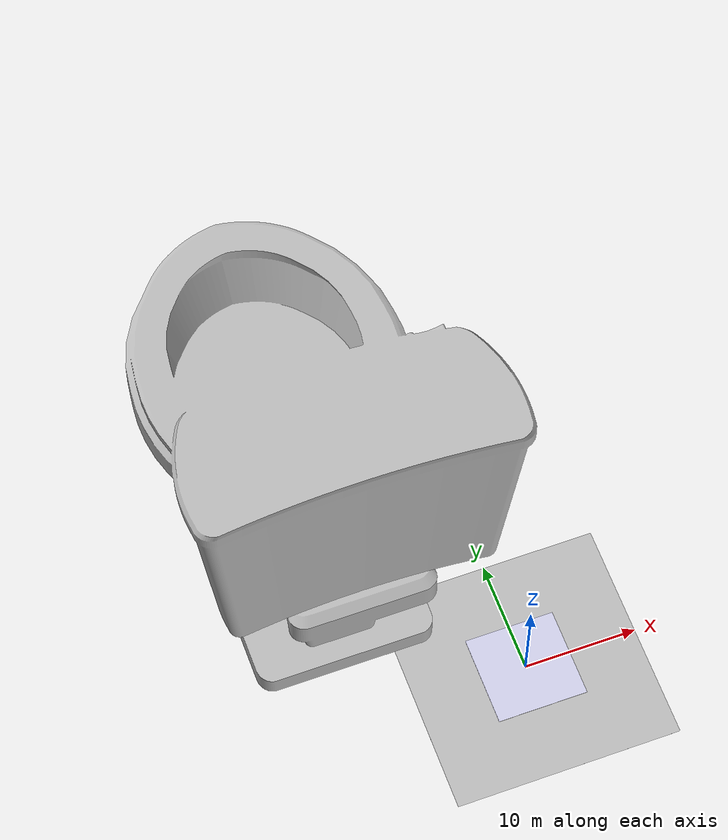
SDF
<sdf version="1.10">
 <world name="toilet_world">
  <physics name="1ms" type="ignored">
   <max_step_size>0.001</max_step_size>
   <real_time_factor>1</real_time_factor>
   <real_time_update_rate>1000</real_time_update_rate>
  </physics>
  <plugin name="gz::sim::systems::Physics" filename="gz-sim-physics-system"/>
  <plugin name="gz::sim::systems::UserCommands" filename="gz-sim-user-commands-system"/>
  <plugin name="gz::sim::systems::SceneBroadcaster" filename="gz-sim-scene-broadcaster-system"/>
  <plugin name="gz::sim::systems::Sensors" filename="gz-sim-sensors-system">
   <render_engine>ogre2</render_engine>
  </plugin>
  <scene>
   <ambient>0.400000006 0.400000006 0.400000006 1</ambient>
   <background>0.699999988 0.699999988 0.699999988 1</background>
   <shadows>true</shadows>
  </scene>
  <gravity>0 0 -9.8000000000000007</gravity>
  <magnetic_field>5.5644999999999998e-06 2.2875799999999999e-05 -4.2388400000000002e-05</magnetic_field>
  <atmosphere type="adiabatic"/>
  <model name="bathroom_floor">
   <model name="Floor_room">
    <link name="main">
     <pose>0 0 0.01 0 0 0</pose>
     <collision name="main_Collision"><geometry><box><size>20 20 0.001</size></box></geometry></collision>
     <visual name="main_Visual">
      <geometry><box><size>20 20 0.001</size></box></geometry>
      <material>
       <script>
        <uri>model://Floor_room/materials/scripts</uri>
        <uri>model://Floor_room/materials/textures</uri>
        <name>floor_room</name>
       </script>
      </material>
     </visual>
    </link>
    <static>true</static>
   </model>
   <static>false</static>
  </model>
  <model name="floor">
   <static>true</static>
   <link name="floor_link">
    <collision name="floor_collision">
     <geometry><box><size>8 8 0.10000000000000001</size></box></geometry>
    </collision>
    <visual name="floor_visual">
     <geometry><box><size>8 8 0.10000000000000001</size></box></geometry>
     <material>
      <ambient>0.800000012 0.800000012 0.899999976 1</ambient>
      <diffuse>0.800000012 0.800000012 0.899999976 1</diffuse>
      <specular>0.100000001 0.100000001 0.100000001 1</specular>
     </material>
    </visual>
    <inertial>
     <mass>1</mass>
     <inertia><ixx>1</ixx><ixy>0</ixy><ixz>0</ixz><iyy>1</iyy><iyz>0</iyz><izz>1</izz></inertia>
    </inertial>
   </link>
  </model>
  <model name="toilet">
   <pose>-1.2842909097671507 6.7122738983016393e-05 0 0 0 1.5700000841906603</pose>
   <model name="toilet">
    <static>true</static>
    <link name="link">
     <collision name="collision">
      <pose>-0.0038730000000000001 0.13400100000000001 0.58209699999999998 0 0 0</pose>
      <geometry><box><size>0.55163099999999998 1.09406 1.18218</size></box></geometry>
     </collision>
     <visual name="visual">
      <geometry>
       <mesh>
        <uri>model://toilet/meshes/toilet.dae</uri>
        <scale>1.3999999999999999 1.3999999999999999 1.3999999999999999</scale>
       </mesh>
      </geometry>
     </visual>
    </link>
   </model>
   <static>false</static>
  </model>
  <model name="bathroom_mirror">
   <pose>0 1.9500000476837158 -0.025474589318037033 0 0 0</pose>
   <model name="whiteboard">
    <static>true</static>
    <link name="link">
     <collision name="collision">
      <pose>-0.010992 -0.000776 0.99821199999999999 0 0 0</pose>
      <geometry><box><size>1.9737199999999999 0.69681999999999999 2.0250699999999999</size></box></geometry>
     </collision>
     <visual name="visual">
      <geometry>
       <mesh><uri>model://whiteboard/meshes/whiteboard.obj</uri><scale>0.01 0.01 0.01</scale></mesh>
      </geometry>
     </visual>
    </link>
   </model>
   <static>false</static>
  </model>
  <light name="sun" type="directional">
   <pose>0 0 10 0 0 0</pose>
   <intensity>1</intensity>
   <direction>-0.5 0.10000000000000001 -0.90000000000000002</direction>
   <diffuse>0.800000012 0.800000012 0.800000012 1</diffuse>
   <specular>0.200000003 0.200000003 0.200000003 1</specular>
   <attenuation>
    <range>1000</range>
    <linear>0.01</linear>
    <constant>0.90000000000000002</constant>
    <quadratic>0.001</quadratic>
   </attenuation>
   <spot><inner_angle>0</inner_angle><outer_angle>0</outer_angle><falloff>0</falloff></spot>
  </light>
  <light name="bathroom_light" type="point">
   <pose>0 0 2.5 0 0 0</pose>
   <cast_shadows>false</cast_shadows>
   <intensity>1</intensity>
   <direction>0 0 -1</direction>
   <diffuse>0.899999976 0.899999976 0.800000012 1</diffuse>
   <specular>0.100000001 0.100000001 0.100000001 1</specular>
   <attenuation>
    <range>10</range>
    <linear>0.10000000000000001</linear>
    <constant>0.20000000000000001</constant>
    <quadratic>0.01</quadratic>
   </attenuation>
   <spot><inner_angle>0</inner_angle><outer_angle>0</outer_angle><falloff>0</falloff></spot>
  </light>
 </world>
</sdf>
